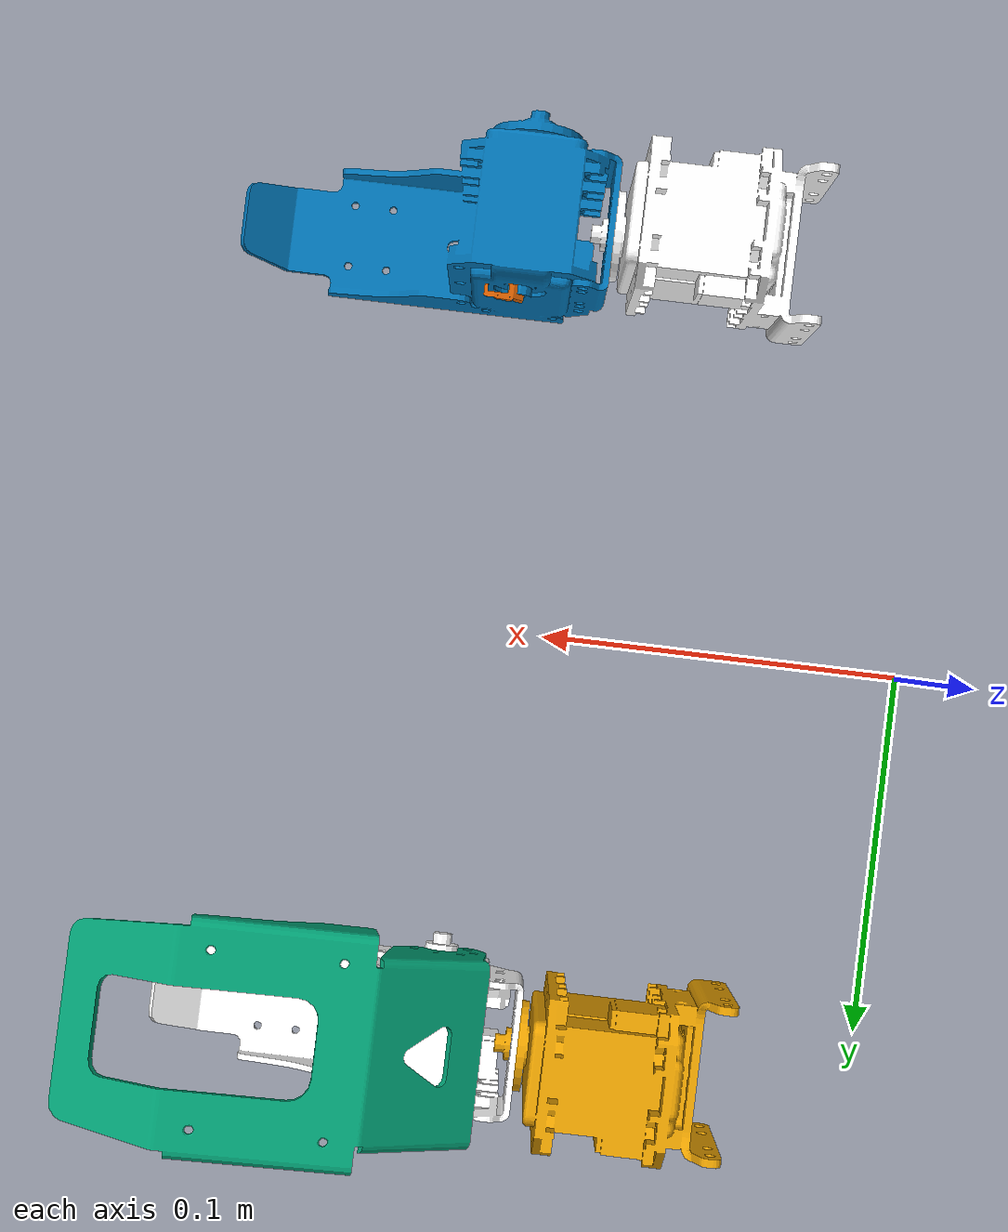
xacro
<?xml version="1.0"?>
<robot name="hands_test" xmlns:xacro="http://www.ros.org/wiki/xacro">

  <!-- Argument with fallback -->
  <xacro:arg name="meshes_xacro_filename" default="$(find hros5_description)/urdf/hros5_visuals_collisions_endoskeleton.xacro"/>
  <!--xacro:arg name="meshes_xacro_filename" default="$(find hros5_description)/urdf/hands/visuals_collisions_hand_section.xacro"/-->

	<!-- XACRO PROPERTIES -->
	<xacro:property name="PI" value="3.14159265359" />
	<xacro:property name="PI_2" value="1.57079632679" />
	<xacro:property name="scale" value="0.1" />

 <!-- Include shared geometry macros -->
	<xacro:include filename="$(arg meshes_xacro_filename)" />

	<!-- Load xacro subparts of the robot -->
  <xacro:include filename="$(find hros5_description)/urdf/hands/hands.xacro"/>

  <!-- Anchor link -->
  <link name="base_link"/>
  <link name="LLowerArm"/>
  <joint name="base_to_llowerarm" type="fixed">
    <parent link="base_link"/>
    <child link="LLowerArm"/>
    <origin xyz="0 0.1 0.075" rpy="0.0 -1.5708 0"/>
  </joint>
  <link name="RLowerArm"/>
  <joint name="base_to_rlowerarm" type="fixed">
    <parent link="base_link"/>
    <child link="RLowerArm"/>
    <origin xyz="0 -0.1 0.075" rpy="0.0 -1.5708 0"/>
  </joint>
</robot>

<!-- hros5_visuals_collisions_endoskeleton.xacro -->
<robot xmlns:xacro="http://www.ros.org/wiki/xacro">

<!-- TORSO VISUALS/COLLISIONS -->
	<xacro:macro name="visuals_collisions_torso" params="">
		<visual>
			<origin xyz="0 0 0" rpy="0 0 0"/>
			<geometry>
				<mesh filename="package://hros5_description/meshes/torso/torso.dae" scale="${scale} ${scale} ${scale}"/>
			</geometry>
		</visual>
		<collision>
			<origin xyz="0 0 0" rpy="0 0 0"/>
			<geometry>
				<mesh filename="package://hros5_description/meshes/torso/torso.stl" scale="${scale} ${scale} ${scale}"/>
			</geometry>
		</collision>
	</xacro:macro>

<!-- HEAD VISUALS/COLLISIONS -->
	<!-- LOWER HEAD VISUALS/COLLISIONS -->
	<xacro:macro name="visuals_collisions_lower_head" params="">
		<visual>
			<origin xyz="-0.03 0 0.033" rpy="0 0 0"/>
			<geometry>
				<mesh filename="package://hros5_description/meshes/head/LowerHead.dae" scale="${scale} ${scale} ${scale}"/>
			</geometry>
		</visual>
		<collision>
			<origin xyz="-0.03 0 0.033" rpy="0 0 0"/>
			<geometry>
				<mesh filename="package://hros5_description/meshes/head/LowerHead.stl" scale="${scale} ${scale} ${scale}"/>
			</geometry>
		</collision>
	</xacro:macro>

	<!-- UPPER HEAD VISUALS/COLLISIONS -->
	<xacro:macro name="visuals_collisions_upper_head_base" params="">
		<visual>
			<origin xyz="0.0075 -0.0045 0.0275" rpy="0 0 0"/>
			<geometry>
				<mesh filename="package://hros5_description/meshes/head/UpperHeadBase.dae" scale="${scale} ${scale} ${scale}"/>
			</geometry>
		</visual>
		<collision>
			<origin xyz="0.0075 -0.0045 0.0275" rpy="0 0 0"/>
			<geometry>
				<mesh filename="package://hros5_description/meshes/head/UpperHeadBase.stl" scale="${scale} ${scale} ${scale}"/>
			</geometry>
		</collision>
	</xacro:macro>
	<xacro:macro name="visuals_collisions_upper_head_motor" params="">
		<visual>
			<origin xyz="-0.03 0 0.00075" rpy="0 0 0"/>
			<geometry>
				<mesh filename="package://hros5_description/meshes/head/UpperHeadMotor.dae" scale="${scale} ${scale} ${scale}"/>
			</geometry>
		</visual>
		<collision>
			<origin xyz="-0.03 0 0.00075" rpy="0 0 0"/>
			<geometry>
				<mesh filename="package://hros5_description/meshes/head/UpperHeadMotor.stl" scale="${scale} ${scale} ${scale}"/>
			</geometry>
		</collision>
	</xacro:macro>
	<xacro:macro name="visuals_collisions_upper_head_back" params="">
		<visual>
			<origin xyz="0.001 0 0.0375" rpy="0 0 0"/>
			<geometry>
				<mesh filename="package://hros5_description/meshes/head/UpperHeadBack.dae" scale="${scale} ${scale} ${scale}"/>
			</geometry>
		</visual>
		<collision>
			<origin xyz="0.001 0 0.0375" rpy="0 0 0"/>
			<geometry>
				<mesh filename="package://hros5_description/meshes/head/UpperHeadBack.stl" scale="${scale} ${scale} ${scale}"/>
			</geometry>
		</collision>
	</xacro:macro>

<!-- ARMS VISUALS/COLLISIONS -->
	<!-- SHOULDER VISUALS/COLLISIONS -->
	<xacro:macro name="visuals_collisions_shoulder" params="side reflect">
		<visual>
			<origin xyz="0 ${reflect*0.0122} -0.0125" rpy="0 0 0"/>
			<geometry>
				<mesh filename="package://hros5_description/meshes/arms/${side}Shoulder.dae" scale="${scale} ${scale} ${scale}"/>
			</geometry>
		</visual>
		<collision>
			<origin xyz="0 ${reflect*0.0122} -0.0125" rpy="0 0 0"/>
			<geometry>
				<mesh filename="package://hros5_description/meshes/arms/${side}Shoulder.stl" scale="${scale} ${scale} ${scale}"/>
			</geometry>
		</collision>
	</xacro:macro>

	<!-- UPPER ARM VISUALS/COLLISIONS -->
	<xacro:macro name="visuals_collisions_upper_arm" params="side reflect">
		<visual>
			<origin xyz="0 -0.0005 -0.0395" rpy="0 0 0"/>
			<geometry>
				<mesh filename="package://hros5_description/meshes/arms/${side}UpperArm.dae" scale="${scale} ${scale} ${scale}"/>
			</geometry>
		</visual>
		<collision>
			<origin xyz="0 ${reflect*-0.00025} -0.0395" rpy="0 0 0"/>
			<geometry>
				<mesh filename="package://hros5_description/meshes/arms/${side}UpperArm.stl" scale="${scale} ${scale} ${scale}"/>
			</geometry>
		</collision>
	</xacro:macro>

	<!-- LOWER ARM VISUALS/COLLISIONS -->
	<xacro:macro name="visuals_collisions_lower_arm" params="side reflect">
		<visual>
			<origin xyz="0 ${reflect*-0.003} -0.0204" rpy="0 0 0"/>
			<geometry>
				<mesh filename="package://hros5_description/meshes/arms/${side}LowerArm.dae" scale="${scale} ${scale} ${scale}"/>
			</geometry>
		</visual>
		<collision>
			<origin xyz="0 ${reflect*-0.003} -0.0204" rpy="0 0 0"/>
			<geometry>
				<mesh filename="package://hros5_description/meshes/arms/${side}LowerArm.stl" scale="${scale} ${scale} ${scale}"/>
			</geometry>
		</collision>
	</xacro:macro>

<!-- HANDS VISUALS/COLLISIONS -->
  <!-- FOREARM VISUALS/COLLISIONS -->
  <xacro:macro name="visuals_collisions_forearm" params="side reflect">
    <visual>
      <origin xyz="0 0 0" rpy="0 0 0"/>
      <geometry>
        <mesh filename="package://hros5_description/meshes/hands/${side}Forearm.dae" scale="${scale} ${scale} ${scale}"/>
      </geometry>
    </visual>
    <collision>
      <origin xyz="0 0 0" rpy="0 0 0"/>
      <geometry>
        <mesh filename="package://hros5_description/meshes/hands/${side}Forearm.stl" scale="${scale} ${scale} ${scale}"/>
      </geometry>
    </collision>
  </xacro:macro>

  <!-- HAND VISUALS/COLLISIONS -->
  <xacro:macro name="visuals_collisions_hand" params="side reflect">
    <visual>
      <origin xyz="0 0 0" rpy="0 0 0"/>
      <geometry>
        <mesh filename="package://hros5_description/meshes/hands/${side}Hand.stl" scale="${scale} ${scale} ${scale}"/>
      </geometry>
    </visual>
    <collision>
      <origin xyz="0 0 0" rpy="0 0 0"/>
      <geometry>
        <mesh filename="package://hros5_description/meshes/hands/${side}Hand.stl" scale="${scale} ${scale} ${scale}"/>
      </geometry>
    </collision>
  </xacro:macro>

  <!-- GRIPPER VISUALS/COLLISIONS -->
  <xacro:macro name="visuals_collisions_gripper" params="side reflect">
    <visual>
      <origin xyz="0 0 0" rpy="0 0 0"/>
      <geometry>
        <mesh filename="package://hros5_description/meshes/hands/${side}Gripper.stl" scale="${scale} ${scale} ${scale}"/>
      </geometry>
    </visual>
    <collision>
      <origin xyz="0 0 0" rpy="0 0 0"/>
      <geometry>
        <mesh filename="package://hros5_description/meshes/hands/${side}Gripper.stl" scale="${scale} ${scale} ${scale}"/>
      </geometry>
    </collision>
  </xacro:macro>

<!-- LEGS VISUALS/COLLISIONS -->
	<!-- HIP VISUALS/COLLISIONS -->
	<xacro:macro name="visuals_collisions_hip" params="side">
		<visual>
			<origin xyz="-0.01605 0 -0.008931" rpy="0 0 0"/>
			<geometry>
				<mesh filename="package://hros5_description/meshes/legs/Hip.dae" scale="${scale} ${scale} ${scale}"/>
			</geometry>
		</visual>
		<collision>
			<origin xyz="-0.01605 0 -0.008931" rpy="0 0 0"/>
			<geometry>
				<mesh filename="package://hros5_description/meshes/legs/Hip.stl" scale="${scale} ${scale} ${scale}"/>
			</geometry>
		</collision>
	</xacro:macro>

	<!-- HIP MOTORS VISUALS/COLLISIONS -->
	<xacro:macro name="visuals_collisions_hip_motors" params="side">
		<visual>
			<origin xyz="0.077 -0.0052 -0.0041" rpy="0 0 0"/>
			<geometry>
				<mesh filename="package://hros5_description/meshes/legs/HipMotors.dae" scale="${scale} ${scale} ${scale}"/>
			</geometry>
		</visual>
		<collision>
			<origin xyz="0.077 -0.0052 -0.0041" rpy="0 0 0"/>
			<geometry>
				<mesh filename="package://hros5_description/meshes/legs/HipMotors.stl" scale="${scale} ${scale} ${scale}"/>
			</geometry>
		</collision>
	</xacro:macro>

	<!-- THIGH VISUALS/COLLISIONS -->
	<xacro:macro name="visuals_collisions_thigh" params="side">
		<visual>
			<origin xyz="0.001 -0.0095 -0.095" rpy="0 0 0"/>
			<geometry>
				<mesh filename="package://hros5_description/meshes/legs/Thigh.dae" scale="${scale} ${scale} ${scale}"/>
			</geometry>
		</visual>
		<collision>
			<origin xyz="0.001 -0.0095 -0.095" rpy="0 0 0"/>
			<geometry>
				<mesh filename="package://hros5_description/meshes/legs/Thigh.stl" scale="${scale} ${scale} ${scale}"/>
			</geometry>
		</collision>
	</xacro:macro>

	<!-- TIBIA VISUALS/COLLISIONS -->
	<xacro:macro name="visuals_collisions_tibia" params="side">
		<visual>
			<origin xyz="0.004 0 -0.059" rpy="0 0 0"/>
			<geometry>
				<mesh filename="package://hros5_description/meshes/legs/Tibia.dae" scale="${scale} ${scale} ${scale}"/>
			</geometry>
		</visual>
		<collision>
			<origin xyz="0.004 0 -0.059" rpy="0 0 0"/>
			<geometry>
				<mesh filename="package://hros5_description/meshes/legs/Tibia.stl" scale="${scale} ${scale} ${scale}"/>
			</geometry>
		</collision>
	</xacro:macro>

	<!-- ANKLE VISUALS/COLLISIONS -->
	<xacro:macro name="visuals_collisions_ankle" params="side">
		<visual>
			<origin xyz="0.00625 0.00525 0.0042" rpy="0 0 0"/>
			<geometry>
				<mesh filename="package://hros5_description/meshes/legs/Ankle.dae" scale="${scale} ${scale} ${scale}"/>
			</geometry>
		</visual>
		<collision>
			<origin xyz="0.00625 0.00525 0.0042" rpy="0 0 0"/>
			<geometry>
				<mesh filename="package://hros5_description/meshes/legs/Ankle.stl" scale="${scale} ${scale} ${scale}"/>
			</geometry>
		</collision>
	</xacro:macro>

	<!-- FOOT VISUALS/COLLISIONS -->
	<xacro:macro name="visuals_collisions_foot" params="side">
		<visual>
			<origin xyz="0.0565 ${reflect*0.007} -0.031" rpy="0 0 0"/>
			<geometry>
				<mesh filename="package://hros5_description/meshes/legs/${side}Foot.dae" scale="${scale} ${scale} ${scale}"/>
			</geometry>
		</visual>
		<collision>
			<origin xyz="0.0565 ${reflect*0.007} -0.031" rpy="0 0 0"/>
			<geometry>
				<mesh filename="package://hros5_description/meshes/legs/${side}Foot.stl" scale="${scale} ${scale} ${scale}"/>
			</geometry>
		</collision>
	</xacro:macro>

</robot>

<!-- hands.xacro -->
<robot xmlns:xacro="http://www.ros.org/wiki/xacro">
  <xacro:macro name="hands_links_joints" params="side reflect">

    <joint name="${side}ForearmJoint" type="fixed">
      <parent link="${side}LowerArm"/>
      <child link="${side}Forearm"/>
      <origin xyz="0 0 -0.075" rpy="-1.5708 3.1416 0"/>
    </joint>

    <link name="${side}Forearm">
      <xacro:visuals_collisions_forearm side="${side}" reflect="${reflect}"/>
      <inertial>
        <origin xyz="0 0 0" />
        <mass value="0.1"/>
        <inertia ixx="0.001" ixy="0.0" ixz="0.0" iyy="0.001" iyz="0.0" izz="0.001"/>
      </inertial>
    </link>

    <link name="${side}Hand">
      <xacro:visuals_collisions_hand side="${side}" reflect="${reflect}"/>
        <inertial>
          <origin xyz="0 0 0"/>
          <mass value="0.08"/>
          <inertia ixx="0.0008" ixy="0.0" ixz="0.0" iyy="0.0008" iyz="0.0" izz="0.0008"/>
        </inertial>
    </link>

    <link name="${side}Gripper">
      <xacro:visuals_collisions_gripper side="${side}" reflect="${reflect}"/>
        <inertial>
          <origin xyz="0 0 0"/>
          <mass value="0.05"/>
          <inertia ixx="0.0005" ixy="0.0" ixz="0.0" iyy="0.0005" iyz="0.0" izz="0.0005"/>
        </inertial>
    </link>

  </xacro:macro>

  <!-- Direct test instantiation -->
  <xacro:hands_links_joints reflect="1" side="L"/>
  <xacro:hands_links_joints reflect="-1" side="R"/>

  <joint name="LWrist" type="revolute">
    <parent link="LForearm"/>
    <child link="LHand"/>
    <origin xyz="0 -0.0205 0" rpy="-3.0949 0 -1.5708" />
    <axis xyz="1 0 0"/>
    <limit lower="-3.14" upper="3.14" effort="1.0" velocity="1.0"/>
  </joint>

  <joint name="RWrist" type="revolute">
    <parent link="RForearm"/>
    <child link="RHand"/>
    <origin xyz="0 -0.0205 0" rpy="-3.0949 0 -1.5708" />
    <axis xyz="1 0 0"/>
    <limit lower="-3.14" upper="3.14" effort="1.0" velocity="1.0"/>
  </joint>

  <joint name="LGripper" type="revolute">
    <parent link="LHand"/>
    <child link="LGripper"/>
    <origin xyz="0.021 0.008 -0.0205" rpy="-1.5708 -1.5708 1.5708" />
    <axis xyz="1 0 0"/>
    <limit lower="-1.0" upper="0.5" effort="1.0" velocity="1.0"/>
  </joint>

  <joint name="RGripper" type="revolute">
    <parent link="RHand"/>
    <child link="RGripper"/>
    <origin xyz="0.021 0.008 -0.0205" rpy="-1.5708 -1.5708 1.5708" />
    <axis xyz="1 0 0"/>
    <limit lower="-1.0" upper="0.5" effort="1.0" velocity="1.0"/>
  </joint>

</robot>
